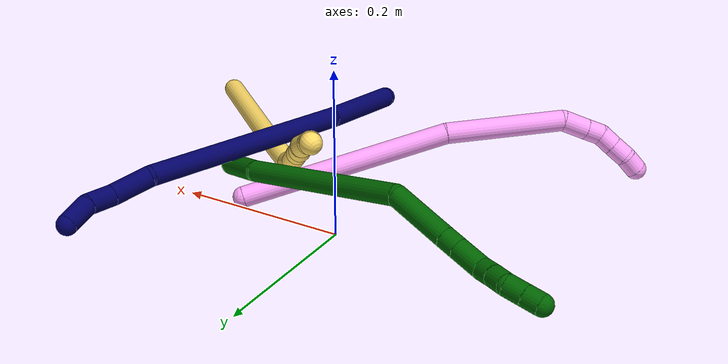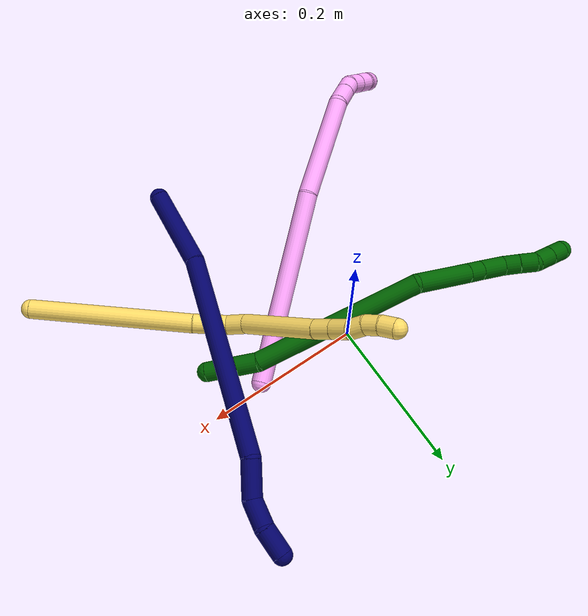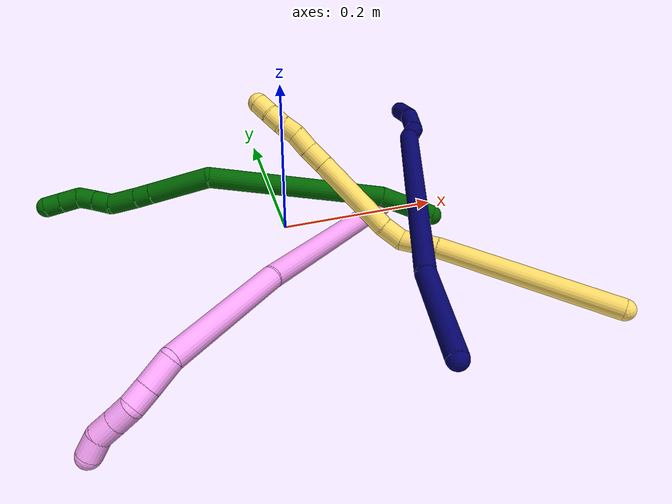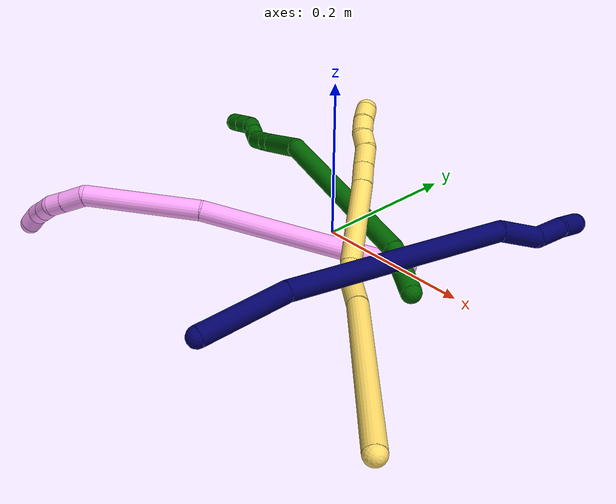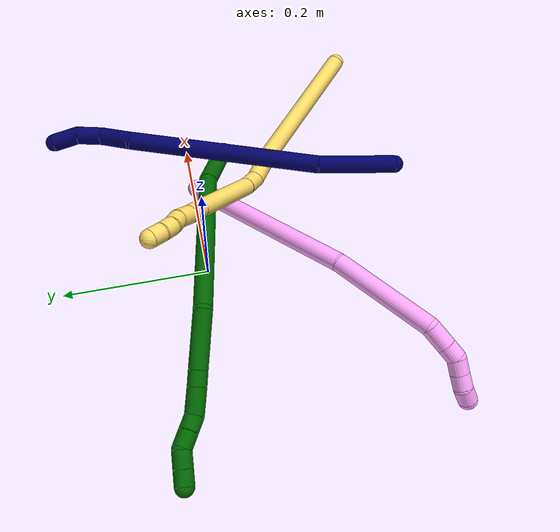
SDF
<sdf version="1.7">
 <world name="default">
  <model name="4">
   <static>0</static>
   <link name="4">
    <collision name="collision-cylinder-e_1_1_4">
     <pose>-0.031244 -0.028802 0.116873 0.241625 -0.253964 -0.030997</pose>
     <geometry><cylinder><radius>0.0125</radius><length>0.248718</length></cylinder></geometry>
     <surface>
      <friction><ode><mu>1.16</mu><mu2>1.16</mu2><slip1>0</slip1><slip2>0</slip2></ode></friction>
      <contact><ode><kp>1e+06</kp><kd>1</kd><max_vel>0</max_vel><min_depth>0.001</min_depth></ode></contact>
     </surface>
    </collision>
    <visual name="visual-cylinder-e_1_1_4">
     <pose>-0.031244 -0.028802 0.116873 0.241625 -0.253964 -0.030997</pose>
     <geometry><cylinder><radius>0.0125</radius><length>0.248718</length></cylinder></geometry>
     <material><ambient>1 0.65098 0.996078 1</ambient></material>
    </visual>
    <collision name="collision-cylinder-e_2_4_5">
     <pose>-0.0693 -0.066215 0.302987 0.12372 -0.097317 -0.006032</pose>
     <geometry><cylinder><radius>0.0125</radius><length>0.140211</length></cylinder></geometry>
     <surface>
      <friction><ode><mu>1.16</mu><mu2>1.16</mu2><slip1>0</slip1><slip2>0</slip2></ode></friction>
      <contact><ode><kp>1e+06</kp><kd>1</kd><max_vel>0</max_vel><min_depth>0.001</min_depth></ode></contact>
     </surface>
    </collision>
    <visual name="visual-cylinder-e_2_4_5">
     <pose>-0.0693 -0.066215 0.302987 0.12372 -0.097317 -0.006032</pose>
     <geometry><cylinder><radius>0.0125</radius><length>0.140211</length></cylinder></geometry>
     <material><ambient>1 0.65098 0.996078 1</ambient></material>
    </visual>
    <collision name="collision-cylinder-e_3_5_6">
     <pose>-0.072298 -0.071928 0.386813 -0.196122 0.251083 -0.02483</pose>
     <geometry><cylinder><radius>0.0125</radius><length>0.030703</length></cylinder></geometry>
     <surface>
      <friction><ode><mu>1.16</mu><mu2>1.16</mu2><slip1>0</slip1><slip2>0</slip2></ode></friction>
      <contact><ode><kp>1e+06</kp><kd>1</kd><max_vel>0</max_vel><min_depth>0.001</min_depth></ode></contact>
     </surface>
    </collision>
    <visual name="visual-cylinder-e_3_5_6">
     <pose>-0.072298 -0.071928 0.386813 -0.196122 0.251083 -0.02483</pose>
     <geometry><cylinder><radius>0.0125</radius><length>0.030703</length></cylinder></geometry>
     <material><ambient>1 0.65098 0.996078 1</ambient></material>
    </visual>
    <collision name="collision-cylinder-e_4_6_7">
     <pose>-0.06599 -0.067386 0.410968 -0.170147 0.251317 -0.021545</pose>
     <geometry><cylinder><radius>0.0125</radius><length>0.02005</length></cylinder></geometry>
     <surface>
      <friction><ode><mu>1.16</mu><mu2>1.16</mu2><slip1>0</slip1><slip2>0</slip2></ode></friction>
      <contact><ode><kp>1e+06</kp><kd>1</kd><max_vel>0</max_vel><min_depth>0.001</min_depth></ode></contact>
     </surface>
    </collision>
    <visual name="visual-cylinder-e_4_6_7">
     <pose>-0.06599 -0.067386 0.410968 -0.170147 0.251317 -0.021545</pose>
     <geometry><cylinder><radius>0.0125</radius><length>0.02005</length></cylinder></geometry>
     <material><ambient>1 0.65098 0.996078 1</ambient></material>
    </visual>
    <collision name="collision-cylinder-e_5_7_8">
     <pose>-0.056885 -0.064308 0.427918 -0.191841 0.721404 -0.072554</pose>
     <geometry><cylinder><radius>0.0125</radius><length>0.020025</length></cylinder></geometry>
     <surface>
      <friction><ode><mu>1.16</mu><mu2>1.16</mu2><slip1>0</slip1><slip2>0</slip2></ode></friction>
      <contact><ode><kp>1e+06</kp><kd>1</kd><max_vel>0</max_vel><min_depth>0.001</min_depth></ode></contact>
     </surface>
    </collision>
    <visual name="visual-cylinder-e_5_7_8">
     <pose>-0.056885 -0.064308 0.427918 -0.191841 0.721404 -0.072554</pose>
     <geometry><cylinder><radius>0.0125</radius><length>0.020025</length></cylinder></geometry>
     <material><ambient>1 0.65098 0.996078 1</ambient></material>
    </visual>
    <collision name="collision-cylinder-e_6_8_9">
     <pose>-0.043777 -0.061706 0.442844 -0.153627 0.704834 -0.056596</pose>
     <geometry><cylinder><radius>0.0125</radius><length>0.02005</length></cylinder></geometry>
     <surface>
      <friction><ode><mu>1.16</mu><mu2>1.16</mu2><slip1>0</slip1><slip2>0</slip2></ode></friction>
      <contact><ode><kp>1e+06</kp><kd>1</kd><max_vel>0</max_vel><min_depth>0.001</min_depth></ode></contact>
     </surface>
    </collision>
    <visual name="visual-cylinder-e_6_8_9">
     <pose>-0.043777 -0.061706 0.442844 -0.153627 0.704834 -0.056596</pose>
     <geometry><cylinder><radius>0.0125</radius><length>0.02005</length></cylinder></geometry>
     <material><ambient>1 0.65098 0.996078 1</ambient></material>
    </visual>
    <collision name="collision-cylinder-e_7_9_2">
     <pose>-0.031782 -0.055888 0.457502 -0.57901 0.574511 -0.175547</pose>
     <geometry><cylinder><radius>0.0125</radius><length>0.020243</length></cylinder></geometry>
     <surface>
      <friction><ode><mu>1.16</mu><mu2>1.16</mu2><slip1>0</slip1><slip2>0</slip2></ode></friction>
      <contact><ode><kp>1e+06</kp><kd>1</kd><max_vel>0</max_vel><min_depth>0.001</min_depth></ode></contact>
     </surface>
    </collision>
    <visual name="visual-cylinder-e_7_9_2">
     <pose>-0.031782 -0.055888 0.457502 -0.57901 0.574511 -0.175547</pose>
     <geometry><cylinder><radius>0.0125</radius><length>0.020243</length></cylinder></geometry>
     <material><ambient>1 0.65098 0.996078 1</ambient></material>
    </visual>
    <collision name="collision-sphere-2">
     <pose>-0.026281 -0.051239 0.464614 0 -0 0</pose>
     <geometry><sphere><radius>0.0125</radius></sphere></geometry>
     <surface>
      <friction><ode><mu>1.16</mu><mu2>1.16</mu2><slip1>0</slip1><slip2>0</slip2></ode></friction>
      <contact><ode><kp>1e+06</kp><kd>1</kd><max_vel>0</max_vel><min_depth>0.001</min_depth></ode></contact>
     </surface>
    </collision>
    <visual name="visual-sphere-2">
     <pose>-0.026281 -0.051239 0.464614 0 -0 0</pose>
     <geometry><sphere><radius>0.0125</radius></sphere></geometry>
     <material><ambient>1 0.65098 0.996078 1</ambient></material>
    </visual>
    <collision name="collision-sphere-9">
     <pose>-0.037282 -0.060537 0.450391 0 -0 0</pose>
     <geometry><sphere><radius>0.0125</radius></sphere></geometry>
     <surface>
      <friction><ode><mu>1.16</mu><mu2>1.16</mu2><slip1>0</slip1><slip2>0</slip2></ode></friction>
      <contact><ode><kp>1e+06</kp><kd>1</kd><max_vel>0</max_vel><min_depth>0.001</min_depth></ode></contact>
     </surface>
    </collision>
    <visual name="visual-sphere-9">
     <pose>-0.037282 -0.060537 0.450391 0 -0 0</pose>
     <geometry><sphere><radius>0.0125</radius></sphere></geometry>
     <material><ambient>1 0.65098 0.996078 1</ambient></material>
    </visual>
    <collision name="collision-sphere-4">
     <pose>-0.062488 -0.057604 0.233746 0 -0 0</pose>
     <geometry><sphere><radius>0.0125</radius></sphere></geometry>
     <surface>
      <friction><ode><mu>1.16</mu><mu2>1.16</mu2><slip1>0</slip1><slip2>0</slip2></ode></friction>
      <contact><ode><kp>1e+06</kp><kd>1</kd><max_vel>0</max_vel><min_depth>0.001</min_depth></ode></contact>
     </surface>
    </collision>
    <visual name="visual-sphere-4">
     <pose>-0.062488 -0.057604 0.233746 0 -0 0</pose>
     <geometry><sphere><radius>0.0125</radius></sphere></geometry>
     <material><ambient>1 0.65098 0.996078 1</ambient></material>
    </visual>
    <collision name="collision-sphere-1">
     <geometry><sphere><radius>0.0125</radius></sphere></geometry>
     <surface>
      <friction><ode><mu>1.16</mu><mu2>1.16</mu2><slip1>0</slip1><slip2>0</slip2></ode></friction>
      <contact><ode><kp>1e+06</kp><kd>1</kd><max_vel>0</max_vel><min_depth>0.001</min_depth></ode></contact>
     </surface>
    </collision>
    <visual name="visual-sphere-1">
     <geometry><sphere><radius>0.0125</radius></sphere></geometry>
     <material><ambient>1 0.65098 0.996078 1</ambient></material>
    </visual>
    <collision name="collision-sphere-8">
     <pose>-0.050272 -0.062874 0.435298 0 -0 0</pose>
     <geometry><sphere><radius>0.0125</radius></sphere></geometry>
     <surface>
      <friction><ode><mu>1.16</mu><mu2>1.16</mu2><slip1>0</slip1><slip2>0</slip2></ode></friction>
      <contact><ode><kp>1e+06</kp><kd>1</kd><max_vel>0</max_vel><min_depth>0.001</min_depth></ode></contact>
     </surface>
    </collision>
    <visual name="visual-sphere-8">
     <pose>-0.050272 -0.062874 0.435298 0 -0 0</pose>
     <geometry><sphere><radius>0.0125</radius></sphere></geometry>
     <material><ambient>1 0.65098 0.996078 1</ambient></material>
    </visual>
    <collision name="collision-sphere-5">
     <pose>-0.076112 -0.074825 0.372227 0 -0 0</pose>
     <geometry><sphere><radius>0.0125</radius></sphere></geometry>
     <surface>
      <friction><ode><mu>1.16</mu><mu2>1.16</mu2><slip1>0</slip1><slip2>0</slip2></ode></friction>
      <contact><ode><kp>1e+06</kp><kd>1</kd><max_vel>0</max_vel><min_depth>0.001</min_depth></ode></contact>
     </surface>
    </collision>
    <visual name="visual-sphere-5">
     <pose>-0.076112 -0.074825 0.372227 0 -0 0</pose>
     <geometry><sphere><radius>0.0125</radius></sphere></geometry>
     <material><ambient>1 0.65098 0.996078 1</ambient></material>
    </visual>
    <collision name="collision-sphere-6">
     <pose>-0.068484 -0.06903 0.401398 0 -0 0</pose>
     <geometry><sphere><radius>0.0125</radius></sphere></geometry>
     <surface>
      <friction><ode><mu>1.16</mu><mu2>1.16</mu2><slip1>0</slip1><slip2>0</slip2></ode></friction>
      <contact><ode><kp>1e+06</kp><kd>1</kd><max_vel>0</max_vel><min_depth>0.001</min_depth></ode></contact>
     </surface>
    </collision>
    <visual name="visual-sphere-6">
     <pose>-0.068484 -0.06903 0.401398 0 -0 0</pose>
     <geometry><sphere><radius>0.0125</radius></sphere></geometry>
     <material><ambient>1 0.65098 0.996078 1</ambient></material>
    </visual>
    <collision name="collision-sphere-7">
     <pose>-0.063497 -0.065741 0.420538 0 -0 0</pose>
     <geometry><sphere><radius>0.0125</radius></sphere></geometry>
     <surface>
      <friction><ode><mu>1.16</mu><mu2>1.16</mu2><slip1>0</slip1><slip2>0</slip2></ode></friction>
      <contact><ode><kp>1e+06</kp><kd>1</kd><max_vel>0</max_vel><min_depth>0.001</min_depth></ode></contact>
     </surface>
    </collision>
    <visual name="visual-sphere-7">
     <pose>-0.063497 -0.065741 0.420538 0 -0 0</pose>
     <geometry><sphere><radius>0.0125</radius></sphere></geometry>
     <material><ambient>1 0.65098 0.996078 1</ambient></material>
    </visual>
    <inertial>
     <pose>-0.047381 -0.047327 0.236752 0 -0 0</pose>
     <mass>0.5</mass>
     <inertia>
      <ixx>0.00145</ixx>
      <ixy>0</ixy>
      <ixz>0</ixz>
      <iyy>0.001454</iyy>
      <iyz>0</iyz>
      <izz>0.000706</izz>
     </inertia>
    </inertial>
   </link>
   <pose>0.129025 -0.00476 0.011519 -1.70085 0.690261 2.16321</pose>
  </model>
  <model name="5">
   <static>0</static>
   <link name="5">
    <collision name="collision-cylinder-e_1_1_4">
     <pose>-0.026333 0.043954 -0.093338 -2.70149 -0.249906 1.02336</pose>
     <geometry><cylinder><radius>0.0125</radius><length>0.212954</length></cylinder></geometry>
     <surface>
      <friction><ode><mu>1.16</mu><mu2>1.16</mu2><slip1>0</slip1><slip2>0</slip2></ode></friction>
      <contact><ode><kp>1e+06</kp><kd>1</kd><max_vel>0</max_vel><min_depth>0.001</min_depth></ode></contact>
     </surface>
    </collision>
    <visual name="visual-cylinder-e_1_1_4">
     <pose>-0.026333 0.043954 -0.093338 -2.70149 -0.249906 1.02336</pose>
     <geometry><cylinder><radius>0.0125</radius><length>0.212954</length></cylinder></geometry>
     <material><ambient>1 0.858824 0.4 1</ambient></material>
    </visual>
    <collision name="collision-cylinder-e_2_4_5">
     <pose>-0.057002 0.095089 -0.207244 -2.80565 -0.196447 1.05283</pose>
     <geometry><cylinder><radius>0.0125</radius><length>0.044425</length></cylinder></geometry>
     <surface>
      <friction><ode><mu>1.16</mu><mu2>1.16</mu2><slip1>0</slip1><slip2>0</slip2></ode></friction>
      <contact><ode><kp>1e+06</kp><kd>1</kd><max_vel>0</max_vel><min_depth>0.001</min_depth></ode></contact>
     </surface>
    </collision>
    <visual name="visual-cylinder-e_2_4_5">
     <pose>-0.057002 0.095089 -0.207244 -2.80565 -0.196447 1.05283</pose>
     <geometry><cylinder><radius>0.0125</radius><length>0.044425</length></cylinder></geometry>
     <material><ambient>1 0.858824 0.4 1</ambient></material>
    </visual>
    <collision name="collision-cylinder-e_3_5_6">
     <pose>-0.069219 0.108466 -0.236625 -2.52898 -0.631605 1.60339</pose>
     <geometry><cylinder><radius>0.0125</radius><length>0.026698</length></cylinder></geometry>
     <surface>
      <friction><ode><mu>1.16</mu><mu2>1.16</mu2><slip1>0</slip1><slip2>0</slip2></ode></friction>
      <contact><ode><kp>1e+06</kp><kd>1</kd><max_vel>0</max_vel><min_depth>0.001</min_depth></ode></contact>
     </surface>
    </collision>
    <visual name="visual-cylinder-e_3_5_6">
     <pose>-0.069219 0.108466 -0.236625 -2.52898 -0.631605 1.60339</pose>
     <geometry><cylinder><radius>0.0125</radius><length>0.026698</length></cylinder></geometry>
     <material><ambient>1 0.858824 0.4 1</ambient></material>
    </visual>
    <collision name="collision-cylinder-e_4_6_7">
     <pose>-0.108462 0.145617 -0.273975 -2.31553 -0.64022 1.29524</pose>
     <geometry><cylinder><radius>0.0125</radius><length>0.104996</length></cylinder></geometry>
     <surface>
      <friction><ode><mu>1.16</mu><mu2>1.16</mu2><slip1>0</slip1><slip2>0</slip2></ode></friction>
      <contact><ode><kp>1e+06</kp><kd>1</kd><max_vel>0</max_vel><min_depth>0.001</min_depth></ode></contact>
     </surface>
    </collision>
    <visual name="visual-cylinder-e_4_6_7">
     <pose>-0.108462 0.145617 -0.273975 -2.31553 -0.64022 1.29524</pose>
     <geometry><cylinder><radius>0.0125</radius><length>0.104996</length></cylinder></geometry>
     <material><ambient>1 0.858824 0.4 1</ambient></material>
    </visual>
    <collision name="collision-cylinder-e_5_7_8">
     <pose>-0.147866 0.1834 -0.309536 -2.37054 -0.687433 1.4455</pose>
     <geometry><cylinder><radius>0.0125</radius><length>0.025351</length></cylinder></geometry>
     <surface>
      <friction><ode><mu>1.16</mu><mu2>1.16</mu2><slip1>0</slip1><slip2>0</slip2></ode></friction>
      <contact><ode><kp>1e+06</kp><kd>1</kd><max_vel>0</max_vel><min_depth>0.001</min_depth></ode></contact>
     </surface>
    </collision>
    <visual name="visual-cylinder-e_5_7_8">
     <pose>-0.147866 0.1834 -0.309536 -2.37054 -0.687433 1.4455</pose>
     <geometry><cylinder><radius>0.0125</radius><length>0.025351</length></cylinder></geometry>
     <material><ambient>1 0.858824 0.4 1</ambient></material>
    </visual>
    <collision name="collision-cylinder-e_6_8_9">
     <pose>-0.164355 0.197369 -0.322596 -2.27231 -0.734657 1.38417</pose>
     <geometry><cylinder><radius>0.0125</radius><length>0.025199</length></cylinder></geometry>
     <surface>
      <friction><ode><mu>1.16</mu><mu2>1.16</mu2><slip1>0</slip1><slip2>0</slip2></ode></friction>
      <contact><ode><kp>1e+06</kp><kd>1</kd><max_vel>0</max_vel><min_depth>0.001</min_depth></ode></contact>
     </surface>
    </collision>
    <visual name="visual-cylinder-e_6_8_9">
     <pose>-0.164355 0.197369 -0.322596 -2.27231 -0.734657 1.38417</pose>
     <geometry><cylinder><radius>0.0125</radius><length>0.025199</length></cylinder></geometry>
     <material><ambient>1 0.858824 0.4 1</ambient></material>
    </visual>
    <collision name="collision-cylinder-e_7_9_10">
     <pose>-0.180091 0.20742 -0.33497 -2.71139 -0.807423 2.19604</pose>
     <geometry><cylinder><radius>0.0125</radius><length>0.020179</length></cylinder></geometry>
     <surface>
      <friction><ode><mu>1.16</mu><mu2>1.16</mu2><slip1>0</slip1><slip2>0</slip2></ode></friction>
      <contact><ode><kp>1e+06</kp><kd>1</kd><max_vel>0</max_vel><min_depth>0.001</min_depth></ode></contact>
     </surface>
    </collision>
    <visual name="visual-cylinder-e_7_9_10">
     <pose>-0.180091 0.20742 -0.33497 -2.71139 -0.807423 2.19604</pose>
     <geometry><cylinder><radius>0.0125</radius><length>0.020179</length></cylinder></geometry>
     <material><ambient>1 0.858824 0.4 1</ambient></material>
    </visual>
    <collision name="collision-cylinder-e_8_10_11">
     <pose>-0.193284 0.215831 -0.347297 -2.39838 -0.627975 1.38938</pose>
     <geometry><cylinder><radius>0.0125</radius><length>0.020095</length></cylinder></geometry>
     <surface>
      <friction><ode><mu>1.16</mu><mu2>1.16</mu2><slip1>0</slip1><slip2>0</slip2></ode></friction>
      <contact><ode><kp>1e+06</kp><kd>1</kd><max_vel>0</max_vel><min_depth>0.001</min_depth></ode></contact>
     </surface>
    </collision>
    <visual name="visual-cylinder-e_8_10_11">
     <pose>-0.193284 0.215831 -0.347297 -2.39838 -0.627975 1.38938</pose>
     <geometry><cylinder><radius>0.0125</radius><length>0.020095</length></cylinder></geometry>
     <material><ambient>1 0.858824 0.4 1</ambient></material>
    </visual>
    <collision name="collision-cylinder-e_9_11_2">
     <pose>-0.203772 0.227846 -0.359414 -2.32592 -0.473661 1.01888</pose>
     <geometry><cylinder><radius>0.0125</radius><length>0.020103</length></cylinder></geometry>
     <surface>
      <friction><ode><mu>1.16</mu><mu2>1.16</mu2><slip1>0</slip1><slip2>0</slip2></ode></friction>
      <contact><ode><kp>1e+06</kp><kd>1</kd><max_vel>0</max_vel><min_depth>0.001</min_depth></ode></contact>
     </surface>
    </collision>
    <visual name="visual-cylinder-e_9_11_2">
     <pose>-0.203772 0.227846 -0.359414 -2.32592 -0.473661 1.01888</pose>
     <geometry><cylinder><radius>0.0125</radius><length>0.020103</length></cylinder></geometry>
     <material><ambient>1 0.858824 0.4 1</ambient></material>
    </visual>
    <collision name="collision-sphere-2">
     <pose>-0.208357 0.23436 -0.365544 0 -0 0</pose>
     <geometry><sphere><radius>0.0125</radius></sphere></geometry>
     <surface>
      <friction><ode><mu>1.16</mu><mu2>1.16</mu2><slip1>0</slip1><slip2>0</slip2></ode></friction>
      <contact><ode><kp>1e+06</kp><kd>1</kd><max_vel>0</max_vel><min_depth>0.001</min_depth></ode></contact>
     </surface>
    </collision>
    <visual name="visual-sphere-2">
     <pose>-0.208357 0.23436 -0.365544 0 -0 0</pose>
     <geometry><sphere><radius>0.0125</radius></sphere></geometry>
     <material><ambient>1 0.858824 0.4 1</ambient></material>
    </visual>
    <collision name="collision-sphere-11">
     <pose>-0.199187 0.221333 -0.353283 0 -0 0</pose>
     <geometry><sphere><radius>0.0125</radius></sphere></geometry>
     <surface>
      <friction><ode><mu>1.16</mu><mu2>1.16</mu2><slip1>0</slip1><slip2>0</slip2></ode></friction>
      <contact><ode><kp>1e+06</kp><kd>1</kd><max_vel>0</max_vel><min_depth>0.001</min_depth></ode></contact>
     </surface>
    </collision>
    <visual name="visual-sphere-11">
     <pose>-0.199187 0.221333 -0.353283 0 -0 0</pose>
     <geometry><sphere><radius>0.0125</radius></sphere></geometry>
     <material><ambient>1 0.858824 0.4 1</ambient></material>
    </visual>
    <collision name="collision-sphere-10">
     <pose>-0.187381 0.210329 -0.34131 0 -0 0</pose>
     <geometry><sphere><radius>0.0125</radius></sphere></geometry>
     <surface>
      <friction><ode><mu>1.16</mu><mu2>1.16</mu2><slip1>0</slip1><slip2>0</slip2></ode></friction>
      <contact><ode><kp>1e+06</kp><kd>1</kd><max_vel>0</max_vel><min_depth>0.001</min_depth></ode></contact>
     </surface>
    </collision>
    <visual name="visual-sphere-10">
     <pose>-0.187381 0.210329 -0.34131 0 -0 0</pose>
     <geometry><sphere><radius>0.0125</radius></sphere></geometry>
     <material><ambient>1 0.858824 0.4 1</ambient></material>
    </visual>
    <collision name="collision-sphere-9">
     <pose>-0.172801 0.204511 -0.32863 0 -0 0</pose>
     <geometry><sphere><radius>0.0125</radius></sphere></geometry>
     <surface>
      <friction><ode><mu>1.16</mu><mu2>1.16</mu2><slip1>0</slip1><slip2>0</slip2></ode></friction>
      <contact><ode><kp>1e+06</kp><kd>1</kd><max_vel>0</max_vel><min_depth>0.001</min_depth></ode></contact>
     </surface>
    </collision>
    <visual name="visual-sphere-9">
     <pose>-0.172801 0.204511 -0.32863 0 -0 0</pose>
     <geometry><sphere><radius>0.0125</radius></sphere></geometry>
     <material><ambient>1 0.858824 0.4 1</ambient></material>
    </visual>
    <collision name="collision-sphere-4">
     <pose>-0.052666 0.087907 -0.186676 0 -0 0</pose>
     <geometry><sphere><radius>0.0125</radius></sphere></geometry>
     <surface>
      <friction><ode><mu>1.16</mu><mu2>1.16</mu2><slip1>0</slip1><slip2>0</slip2></ode></friction>
      <contact><ode><kp>1e+06</kp><kd>1</kd><max_vel>0</max_vel><min_depth>0.001</min_depth></ode></contact>
     </surface>
    </collision>
    <visual name="visual-sphere-4">
     <pose>-0.052666 0.087907 -0.186676 0 -0 0</pose>
     <geometry><sphere><radius>0.0125</radius></sphere></geometry>
     <material><ambient>1 0.858824 0.4 1</ambient></material>
    </visual>
    <collision name="collision-sphere-1">
     <geometry><sphere><radius>0.0125</radius></sphere></geometry>
     <surface>
      <friction><ode><mu>1.16</mu><mu2>1.16</mu2><slip1>0</slip1><slip2>0</slip2></ode></friction>
      <contact><ode><kp>1e+06</kp><kd>1</kd><max_vel>0</max_vel><min_depth>0.001</min_depth></ode></contact>
     </surface>
    </collision>
    <visual name="visual-sphere-1">
     <geometry><sphere><radius>0.0125</radius></sphere></geometry>
     <material><ambient>1 0.858824 0.4 1</ambient></material>
    </visual>
    <collision name="collision-sphere-8">
     <pose>-0.155909 0.190227 -0.316562 0 -0 0</pose>
     <geometry><sphere><radius>0.0125</radius></sphere></geometry>
     <surface>
      <friction><ode><mu>1.16</mu><mu2>1.16</mu2><slip1>0</slip1><slip2>0</slip2></ode></friction>
      <contact><ode><kp>1e+06</kp><kd>1</kd><max_vel>0</max_vel><min_depth>0.001</min_depth></ode></contact>
     </surface>
    </collision>
    <visual name="visual-sphere-8">
     <pose>-0.155909 0.190227 -0.316562 0 -0 0</pose>
     <geometry><sphere><radius>0.0125</radius></sphere></geometry>
     <material><ambient>1 0.858824 0.4 1</ambient></material>
    </visual>
    <collision name="collision-sphere-5">
     <pose>-0.061337 0.102271 -0.227811 0 -0 0</pose>
     <geometry><sphere><radius>0.0125</radius></sphere></geometry>
     <surface>
      <friction><ode><mu>1.16</mu><mu2>1.16</mu2><slip1>0</slip1><slip2>0</slip2></ode></friction>
      <contact><ode><kp>1e+06</kp><kd>1</kd><max_vel>0</max_vel><min_depth>0.001</min_depth></ode></contact>
     </surface>
    </collision>
    <visual name="visual-sphere-5">
     <pose>-0.061337 0.102271 -0.227811 0 -0 0</pose>
     <geometry><sphere><radius>0.0125</radius></sphere></geometry>
     <material><ambient>1 0.858824 0.4 1</ambient></material>
    </visual>
    <collision name="collision-sphere-6">
     <pose>-0.077101 0.114661 -0.24544 0 -0 0</pose>
     <geometry><sphere><radius>0.0125</radius></sphere></geometry>
     <surface>
      <friction><ode><mu>1.16</mu><mu2>1.16</mu2><slip1>0</slip1><slip2>0</slip2></ode></friction>
      <contact><ode><kp>1e+06</kp><kd>1</kd><max_vel>0</max_vel><min_depth>0.001</min_depth></ode></contact>
     </surface>
    </collision>
    <visual name="visual-sphere-6">
     <pose>-0.077101 0.114661 -0.24544 0 -0 0</pose>
     <geometry><sphere><radius>0.0125</radius></sphere></geometry>
     <material><ambient>1 0.858824 0.4 1</ambient></material>
    </visual>
    <collision name="collision-sphere-7">
     <pose>-0.139823 0.176573 -0.30251 0 -0 0</pose>
     <geometry><sphere><radius>0.0125</radius></sphere></geometry>
     <surface>
      <friction><ode><mu>1.16</mu><mu2>1.16</mu2><slip1>0</slip1><slip2>0</slip2></ode></friction>
      <contact><ode><kp>1e+06</kp><kd>1</kd><max_vel>0</max_vel><min_depth>0.001</min_depth></ode></contact>
     </surface>
    </collision>
    <visual name="visual-sphere-7">
     <pose>-0.139823 0.176573 -0.30251 0 -0 0</pose>
     <geometry><sphere><radius>0.0125</radius></sphere></geometry>
     <material><ambient>1 0.858824 0.4 1</ambient></material>
    </visual>
    <inertial>
     <pose>-0.081762 0.108991 -0.202214 0 -0 0</pose>
     <mass>0.5</mass>
     <inertia>
      <ixx>0.001188</ixx>
      <ixy>0</ixy>
      <ixz>0</ixz>
      <iyy>0.0005</iyy>
      <iyz>0</iyz>
      <izz>-0.000162</izz>
     </inertia>
    </inertial>
   </link>
   <pose>0.318331 -0.255955 0.01249 0.578503 1.21259 0.252553</pose>
  </model>
  <model name="6">
   <static>0</static>
   <link name="6">
    <collision name="collision-cylinder-e_1_1_4">
     <pose>-0.022661 0.005154 0.024388 -0.208286 -0.737824 0.080774</pose>
     <geometry><cylinder><radius>0.0125</radius><length>0.067376</length></cylinder></geometry>
     <surface>
      <friction><ode><mu>1.16</mu><mu2>1.16</mu2><slip1>0</slip1><slip2>0</slip2></ode></friction>
      <contact><ode><kp>1e+06</kp><kd>1</kd><max_vel>0</max_vel><min_depth>0.001</min_depth></ode></contact>
     </surface>
    </collision>
    <visual name="visual-cylinder-e_1_1_4">
     <pose>-0.022661 0.005154 0.024388 -0.208286 -0.737824 0.080774</pose>
     <geometry><cylinder><radius>0.0125</radius><length>0.067376</length></cylinder></geometry>
     <material><ambient>0 0.392157 0.003922 1</ambient></material>
    </visual>
    <collision name="collision-cylinder-e_2_4_5">
     <pose>-0.132209 0.04699 0.102863 -0.595932 -0.925919 0.304213</pose>
     <geometry><cylinder><radius>0.0125</radius><length>0.217441</length></cylinder></geometry>
     <surface>
      <friction><ode><mu>1.16</mu><mu2>1.16</mu2><slip1>0</slip1><slip2>0</slip2></ode></friction>
      <contact><ode><kp>1e+06</kp><kd>1</kd><max_vel>0</max_vel><min_depth>0.001</min_depth></ode></contact>
     </surface>
    </collision>
    <visual name="visual-cylinder-e_2_4_5">
     <pose>-0.132209 0.04699 0.102863 -0.595932 -0.925919 0.304213</pose>
     <geometry><cylinder><radius>0.0125</radius><length>0.217441</length></cylinder></geometry>
     <material><ambient>0 0.392157 0.003922 1</ambient></material>
    </visual>
    <collision name="collision-cylinder-e_3_5_6">
     <pose>-0.236351 0.110221 0.176883 -0.926811 -0.479318 0.243005</pose>
     <geometry><cylinder><radius>0.0125</radius><length>0.074835</length></cylinder></geometry>
     <surface>
      <friction><ode><mu>1.16</mu><mu2>1.16</mu2><slip1>0</slip1><slip2>0</slip2></ode></friction>
      <contact><ode><kp>1e+06</kp><kd>1</kd><max_vel>0</max_vel><min_depth>0.001</min_depth></ode></contact>
     </surface>
    </collision>
    <visual name="visual-cylinder-e_3_5_6">
     <pose>-0.236351 0.110221 0.176883 -0.926811 -0.479318 0.243005</pose>
     <geometry><cylinder><radius>0.0125</radius><length>0.074835</length></cylinder></geometry>
     <material><ambient>0 0.392157 0.003922 1</ambient></material>
    </visual>
    <collision name="collision-cylinder-e_4_6_7">
     <pose>-0.258309 0.143897 0.202101 -0.932616 -0.487453 0.249031</pose>
     <geometry><cylinder><radius>0.0125</radius><length>0.02008</length></cylinder></geometry>
     <surface>
      <friction><ode><mu>1.16</mu><mu2>1.16</mu2><slip1>0</slip1><slip2>0</slip2></ode></friction>
      <contact><ode><kp>1e+06</kp><kd>1</kd><max_vel>0</max_vel><min_depth>0.001</min_depth></ode></contact>
     </surface>
    </collision>
    <visual name="visual-cylinder-e_4_6_7">
     <pose>-0.258309 0.143897 0.202101 -0.932616 -0.487453 0.249031</pose>
     <geometry><cylinder><radius>0.0125</radius><length>0.02008</length></cylinder></geometry>
     <material><ambient>0 0.392157 0.003922 1</ambient></material>
    </visual>
    <collision name="collision-cylinder-e_5_7_8">
     <pose>-0.271303 0.163038 0.216922 -0.899943 -0.495525 0.243164</pose>
     <geometry><cylinder><radius>0.0125</radius><length>0.034875</length></cylinder></geometry>
     <surface>
      <friction><ode><mu>1.16</mu><mu2>1.16</mu2><slip1>0</slip1><slip2>0</slip2></ode></friction>
      <contact><ode><kp>1e+06</kp><kd>1</kd><max_vel>0</max_vel><min_depth>0.001</min_depth></ode></contact>
     </surface>
    </collision>
    <visual name="visual-cylinder-e_5_7_8">
     <pose>-0.271303 0.163038 0.216922 -0.899943 -0.495525 0.243164</pose>
     <geometry><cylinder><radius>0.0125</radius><length>0.034875</length></cylinder></geometry>
     <material><ambient>0 0.392157 0.003922 1</ambient></material>
    </visual>
    <collision name="collision-cylinder-e_6_8_9">
     <pose>-0.285711 0.178345 0.234327 -0.39616 -0.622084 0.12887</pose>
     <geometry><cylinder><radius>0.0125</radius><length>0.02099</length></cylinder></geometry>
     <surface>
      <friction><ode><mu>1.16</mu><mu2>1.16</mu2><slip1>0</slip1><slip2>0</slip2></ode></friction>
      <contact><ode><kp>1e+06</kp><kd>1</kd><max_vel>0</max_vel><min_depth>0.001</min_depth></ode></contact>
     </surface>
    </collision>
    <visual name="visual-cylinder-e_6_8_9">
     <pose>-0.285711 0.178345 0.234327 -0.39616 -0.622084 0.12887</pose>
     <geometry><cylinder><radius>0.0125</radius><length>0.02099</length></cylinder></geometry>
     <material><ambient>0 0.392157 0.003922 1</ambient></material>
    </visual>
    <collision name="collision-cylinder-e_7_9_10">
     <pose>-0.297894 0.185447 0.250389 -0.435367 -0.591324 0.13454</pose>
     <geometry><cylinder><radius>0.0125</radius><length>0.021769</length></cylinder></geometry>
     <surface>
      <friction><ode><mu>1.16</mu><mu2>1.16</mu2><slip1>0</slip1><slip2>0</slip2></ode></friction>
      <contact><ode><kp>1e+06</kp><kd>1</kd><max_vel>0</max_vel><min_depth>0.001</min_depth></ode></contact>
     </surface>
    </collision>
    <visual name="visual-cylinder-e_7_9_10">
     <pose>-0.297894 0.185447 0.250389 -0.435367 -0.591324 0.13454</pose>
     <geometry><cylinder><radius>0.0125</radius><length>0.021769</length></cylinder></geometry>
     <material><ambient>0 0.392157 0.003922 1</ambient></material>
    </visual>
    <collision name="collision-cylinder-e_8_10_11">
     <pose>-0.31077 0.197055 0.263082 -1.04738 -0.647495 0.382803</pose>
     <geometry><cylinder><radius>0.0125</radius><length>0.022574</length></cylinder></geometry>
     <surface>
      <friction><ode><mu>1.16</mu><mu2>1.16</mu2><slip1>0</slip1><slip2>0</slip2></ode></friction>
      <contact><ode><kp>1e+06</kp><kd>1</kd><max_vel>0</max_vel><min_depth>0.001</min_depth></ode></contact>
     </surface>
    </collision>
    <visual name="visual-cylinder-e_8_10_11">
     <pose>-0.31077 0.197055 0.263082 -1.04738 -0.647495 0.382803</pose>
     <geometry><cylinder><radius>0.0125</radius><length>0.022574</length></cylinder></geometry>
     <material><ambient>0 0.392157 0.003922 1</ambient></material>
    </visual>
    <collision name="collision-cylinder-e_9_11_2">
     <pose>-0.323628 0.211783 0.271579 -1.04767 -0.647392 0.382864</pose>
     <geometry><cylinder><radius>0.0125</radius><length>0.02006</length></cylinder></geometry>
     <surface>
      <friction><ode><mu>1.16</mu><mu2>1.16</mu2><slip1>0</slip1><slip2>0</slip2></ode></friction>
      <contact><ode><kp>1e+06</kp><kd>1</kd><max_vel>0</max_vel><min_depth>0.001</min_depth></ode></contact>
     </surface>
    </collision>
    <visual name="visual-cylinder-e_9_11_2">
     <pose>-0.323628 0.211783 0.271579 -1.04767 -0.647392 0.382864</pose>
     <geometry><cylinder><radius>0.0125</radius><length>0.02006</length></cylinder></geometry>
     <material><ambient>0 0.392157 0.003922 1</ambient></material>
    </visual>
    <collision name="collision-sphere-2">
     <pose>-0.329677 0.218714 0.275576 0 -0 0</pose>
     <geometry><sphere><radius>0.0125</radius></sphere></geometry>
     <surface>
      <friction><ode><mu>1.16</mu><mu2>1.16</mu2><slip1>0</slip1><slip2>0</slip2></ode></friction>
      <contact><ode><kp>1e+06</kp><kd>1</kd><max_vel>0</max_vel><min_depth>0.001</min_depth></ode></contact>
     </surface>
    </collision>
    <visual name="visual-sphere-2">
     <pose>-0.329677 0.218714 0.275576 0 -0 0</pose>
     <geometry><sphere><radius>0.0125</radius></sphere></geometry>
     <material><ambient>0 0.392157 0.003922 1</ambient></material>
    </visual>
    <collision name="collision-sphere-11">
     <pose>-0.317578 0.204852 0.267582 0 -0 0</pose>
     <geometry><sphere><radius>0.0125</radius></sphere></geometry>
     <surface>
      <friction><ode><mu>1.16</mu><mu2>1.16</mu2><slip1>0</slip1><slip2>0</slip2></ode></friction>
      <contact><ode><kp>1e+06</kp><kd>1</kd><max_vel>0</max_vel><min_depth>0.001</min_depth></ode></contact>
     </surface>
    </collision>
    <visual name="visual-sphere-11">
     <pose>-0.317578 0.204852 0.267582 0 -0 0</pose>
     <geometry><sphere><radius>0.0125</radius></sphere></geometry>
     <material><ambient>0 0.392157 0.003922 1</ambient></material>
    </visual>
    <collision name="collision-sphere-10">
     <pose>-0.303962 0.189258 0.258582 0 -0 0</pose>
     <geometry><sphere><radius>0.0125</radius></sphere></geometry>
     <surface>
      <friction><ode><mu>1.16</mu><mu2>1.16</mu2><slip1>0</slip1><slip2>0</slip2></ode></friction>
      <contact><ode><kp>1e+06</kp><kd>1</kd><max_vel>0</max_vel><min_depth>0.001</min_depth></ode></contact>
     </surface>
    </collision>
    <visual name="visual-sphere-10">
     <pose>-0.303962 0.189258 0.258582 0 -0 0</pose>
     <geometry><sphere><radius>0.0125</radius></sphere></geometry>
     <material><ambient>0 0.392157 0.003922 1</ambient></material>
    </visual>
    <collision name="collision-sphere-9">
     <pose>-0.291827 0.181636 0.242195 0 -0 0</pose>
     <geometry><sphere><radius>0.0125</radius></sphere></geometry>
     <surface>
      <friction><ode><mu>1.16</mu><mu2>1.16</mu2><slip1>0</slip1><slip2>0</slip2></ode></friction>
      <contact><ode><kp>1e+06</kp><kd>1</kd><max_vel>0</max_vel><min_depth>0.001</min_depth></ode></contact>
     </surface>
    </collision>
    <visual name="visual-sphere-9">
     <pose>-0.291827 0.181636 0.242195 0 -0 0</pose>
     <geometry><sphere><radius>0.0125</radius></sphere></geometry>
     <material><ambient>0 0.392157 0.003922 1</ambient></material>
    </visual>
    <collision name="collision-sphere-4">
     <pose>-0.045322 0.010309 0.048776 0 -0 0</pose>
     <geometry><sphere><radius>0.0125</radius></sphere></geometry>
     <surface>
      <friction><ode><mu>1.16</mu><mu2>1.16</mu2><slip1>0</slip1><slip2>0</slip2></ode></friction>
      <contact><ode><kp>1e+06</kp><kd>1</kd><max_vel>0</max_vel><min_depth>0.001</min_depth></ode></contact>
     </surface>
    </collision>
    <visual name="visual-sphere-4">
     <pose>-0.045322 0.010309 0.048776 0 -0 0</pose>
     <geometry><sphere><radius>0.0125</radius></sphere></geometry>
     <material><ambient>0 0.392157 0.003922 1</ambient></material>
    </visual>
    <collision name="collision-sphere-1">
     <geometry><sphere><radius>0.0125</radius></sphere></geometry>
     <surface>
      <friction><ode><mu>1.16</mu><mu2>1.16</mu2><slip1>0</slip1><slip2>0</slip2></ode></friction>
      <contact><ode><kp>1e+06</kp><kd>1</kd><max_vel>0</max_vel><min_depth>0.001</min_depth></ode></contact>
     </surface>
    </collision>
    <visual name="visual-sphere-1">
     <geometry><sphere><radius>0.0125</radius></sphere></geometry>
     <material><ambient>0 0.392157 0.003922 1</ambient></material>
    </visual>
    <collision name="collision-sphere-8">
     <pose>-0.279595 0.175054 0.226458 0 -0 0</pose>
     <geometry><sphere><radius>0.0125</radius></sphere></geometry>
     <surface>
      <friction><ode><mu>1.16</mu><mu2>1.16</mu2><slip1>0</slip1><slip2>0</slip2></ode></friction>
      <contact><ode><kp>1e+06</kp><kd>1</kd><max_vel>0</max_vel><min_depth>0.001</min_depth></ode></contact>
     </surface>
    </collision>
    <visual name="visual-sphere-8">
     <pose>-0.279595 0.175054 0.226458 0 -0 0</pose>
     <geometry><sphere><radius>0.0125</radius></sphere></geometry>
     <material><ambient>0 0.392157 0.003922 1</ambient></material>
    </visual>
    <collision name="collision-sphere-5">
     <pose>-0.219095 0.08367 0.15695 0 -0 0</pose>
     <geometry><sphere><radius>0.0125</radius></sphere></geometry>
     <surface>
      <friction><ode><mu>1.16</mu><mu2>1.16</mu2><slip1>0</slip1><slip2>0</slip2></ode></friction>
      <contact><ode><kp>1e+06</kp><kd>1</kd><max_vel>0</max_vel><min_depth>0.001</min_depth></ode></contact>
     </surface>
    </collision>
    <visual name="visual-sphere-5">
     <pose>-0.219095 0.08367 0.15695 0 -0 0</pose>
     <geometry><sphere><radius>0.0125</radius></sphere></geometry>
     <material><ambient>0 0.392157 0.003922 1</ambient></material>
    </visual>
    <collision name="collision-sphere-6">
     <pose>-0.253607 0.136773 0.196817 0 -0 0</pose>
     <geometry><sphere><radius>0.0125</radius></sphere></geometry>
     <surface>
      <friction><ode><mu>1.16</mu><mu2>1.16</mu2><slip1>0</slip1><slip2>0</slip2></ode></friction>
      <contact><ode><kp>1e+06</kp><kd>1</kd><max_vel>0</max_vel><min_depth>0.001</min_depth></ode></contact>
     </surface>
    </collision>
    <visual name="visual-sphere-6">
     <pose>-0.253607 0.136773 0.196817 0 -0 0</pose>
     <geometry><sphere><radius>0.0125</radius></sphere></geometry>
     <material><ambient>0 0.392157 0.003922 1</ambient></material>
    </visual>
    <collision name="collision-sphere-7">
     <pose>-0.263012 0.151022 0.207386 0 -0 0</pose>
     <geometry><sphere><radius>0.0125</radius></sphere></geometry>
     <surface>
      <friction><ode><mu>1.16</mu><mu2>1.16</mu2><slip1>0</slip1><slip2>0</slip2></ode></friction>
      <contact><ode><kp>1e+06</kp><kd>1</kd><max_vel>0</max_vel><min_depth>0.001</min_depth></ode></contact>
     </surface>
    </collision>
    <visual name="visual-sphere-7">
     <pose>-0.263012 0.151022 0.207386 0 -0 0</pose>
     <geometry><sphere><radius>0.0125</radius></sphere></geometry>
     <material><ambient>0 0.392157 0.003922 1</ambient></material>
    </visual>
    <inertial>
     <pose>-0.177199 0.087732 0.141252 0 -0 0</pose>
     <mass>0.5</mass>
     <inertia>
      <ixx>0.000703</ixx>
      <ixy>0</ixy>
      <ixz>0</ixz>
      <iyy>0.001048</iyy>
      <iyz>0</iyz>
      <izz>0.000425</izz>
     </inertia>
    </inertial>
   </link>
   <pose>0.17862 -0.0522 0.021333 -1.54762 0.613001 0.355792</pose>
  </model>
  <model name="7">
   <static>0</static>
   <link name="7">
    <collision name="collision-cylinder-e_1_1_4">
     <pose>0.003777 0.043238 0.034923 -0.891376 0.067852 -0.032426</pose>
     <geometry><cylinder><radius>0.0125</radius><length>0.111417</length></cylinder></geometry>
     <surface>
      <friction><ode><mu>1.16</mu><mu2>1.16</mu2><slip1>0</slip1><slip2>0</slip2></ode></friction>
      <contact><ode><kp>1e+06</kp><kd>1</kd><max_vel>0</max_vel><min_depth>0.001</min_depth></ode></contact>
     </surface>
    </collision>
    <visual name="visual-cylinder-e_1_1_4">
     <pose>0.003777 0.043238 0.034923 -0.891376 0.067852 -0.032426</pose>
     <geometry><cylinder><radius>0.0125</radius><length>0.111417</length></cylinder></geometry>
     <material><ambient>0.003922 0 0.403922 1</ambient></material>
    </visual>
    <collision name="collision-cylinder-e_2_4_5">
     <pose>0.043532 0.191465 0.145231 -0.948079 0.271488 -0.139922</pose>
     <geometry><cylinder><radius>0.0125</radius><length>0.268327</length></cylinder></geometry>
     <surface>
      <friction><ode><mu>1.16</mu><mu2>1.16</mu2><slip1>0</slip1><slip2>0</slip2></ode></friction>
      <contact><ode><kp>1e+06</kp><kd>1</kd><max_vel>0</max_vel><min_depth>0.001</min_depth></ode></contact>
     </surface>
    </collision>
    <visual name="visual-cylinder-e_2_4_5">
     <pose>0.043532 0.191465 0.145231 -0.948079 0.271488 -0.139922</pose>
     <geometry><cylinder><radius>0.0125</radius><length>0.268327</length></cylinder></geometry>
     <material><ambient>0.003922 0 0.403922 1</ambient></material>
    </visual>
    <collision name="collision-cylinder-e_3_5_6">
     <pose>0.091425 0.316693 0.2263 -1.29695 0.515646 -0.394456</pose>
     <geometry><cylinder><radius>0.0125</radius><length>0.048328</length></cylinder></geometry>
     <surface>
      <friction><ode><mu>1.16</mu><mu2>1.16</mu2><slip1>0</slip1><slip2>0</slip2></ode></friction>
      <contact><ode><kp>1e+06</kp><kd>1</kd><max_vel>0</max_vel><min_depth>0.001</min_depth></ode></contact>
     </surface>
    </collision>
    <visual name="visual-cylinder-e_3_5_6">
     <pose>0.091425 0.316693 0.2263 -1.29695 0.515646 -0.394456</pose>
     <geometry><cylinder><radius>0.0125</radius><length>0.048328</length></cylinder></geometry>
     <material><ambient>0.003922 0 0.403922 1</ambient></material>
    </visual>
    <collision name="collision-cylinder-e_4_6_7">
     <pose>0.105836 0.351072 0.242619 -0.926019 0.140139 -0.070044</pose>
     <geometry><cylinder><radius>0.0125</radius><length>0.035736</length></cylinder></geometry>
     <surface>
      <friction><ode><mu>1.16</mu><mu2>1.16</mu2><slip1>0</slip1><slip2>0</slip2></ode></friction>
      <contact><ode><kp>1e+06</kp><kd>1</kd><max_vel>0</max_vel><min_depth>0.001</min_depth></ode></contact>
     </surface>
    </collision>
    <visual name="visual-cylinder-e_4_6_7">
     <pose>0.105836 0.351072 0.242619 -0.926019 0.140139 -0.070044</pose>
     <geometry><cylinder><radius>0.0125</radius><length>0.035736</length></cylinder></geometry>
     <material><ambient>0.003922 0 0.403922 1</ambient></material>
    </visual>
    <collision name="collision-cylinder-e_5_7_2">
     <pose>0.107478 0.382251 0.259289 -1.23032 -0.047196 0.033353</pose>
     <geometry><cylinder><radius>0.0125</radius><length>0.036192</length></cylinder></geometry>
     <surface>
      <friction><ode><mu>1.16</mu><mu2>1.16</mu2><slip1>0</slip1><slip2>0</slip2></ode></friction>
      <contact><ode><kp>1e+06</kp><kd>1</kd><max_vel>0</max_vel><min_depth>0.001</min_depth></ode></contact>
     </surface>
    </collision>
    <visual name="visual-cylinder-e_5_7_2">
     <pose>0.107478 0.382251 0.259289 -1.23032 -0.047196 0.033353</pose>
     <geometry><cylinder><radius>0.0125</radius><length>0.036192</length></cylinder></geometry>
     <material><ambient>0.003922 0 0.403922 1</ambient></material>
    </visual>
    <collision name="collision-sphere-2">
     <pose>0.106625 0.399289 0.265325 0 -0 0</pose>
     <geometry><sphere><radius>0.0125</radius></sphere></geometry>
     <surface>
      <friction><ode><mu>1.16</mu><mu2>1.16</mu2><slip1>0</slip1><slip2>0</slip2></ode></friction>
      <contact><ode><kp>1e+06</kp><kd>1</kd><max_vel>0</max_vel><min_depth>0.001</min_depth></ode></contact>
     </surface>
    </collision>
    <visual name="visual-sphere-2">
     <pose>0.106625 0.399289 0.265325 0 -0 0</pose>
     <geometry><sphere><radius>0.0125</radius></sphere></geometry>
     <material><ambient>0.003922 0 0.403922 1</ambient></material>
    </visual>
    <collision name="collision-sphere-7">
     <pose>0.108332 0.365213 0.253253 0 -0 0</pose>
     <geometry><sphere><radius>0.0125</radius></sphere></geometry>
     <surface>
      <friction><ode><mu>1.16</mu><mu2>1.16</mu2><slip1>0</slip1><slip2>0</slip2></ode></friction>
      <contact><ode><kp>1e+06</kp><kd>1</kd><max_vel>0</max_vel><min_depth>0.001</min_depth></ode></contact>
     </surface>
    </collision>
    <visual name="visual-sphere-7">
     <pose>0.108332 0.365213 0.253253 0 -0 0</pose>
     <geometry><sphere><radius>0.0125</radius></sphere></geometry>
     <material><ambient>0.003922 0 0.403922 1</ambient></material>
    </visual>
    <collision name="collision-sphere-6">
     <pose>0.103341 0.336931 0.231985 0 -0 0</pose>
     <geometry><sphere><radius>0.0125</radius></sphere></geometry>
     <surface>
      <friction><ode><mu>1.16</mu><mu2>1.16</mu2><slip1>0</slip1><slip2>0</slip2></ode></friction>
      <contact><ode><kp>1e+06</kp><kd>1</kd><max_vel>0</max_vel><min_depth>0.001</min_depth></ode></contact>
     </surface>
    </collision>
    <visual name="visual-sphere-6">
     <pose>0.103341 0.336931 0.231985 0 -0 0</pose>
     <geometry><sphere><radius>0.0125</radius></sphere></geometry>
     <material><ambient>0.003922 0 0.403922 1</ambient></material>
    </visual>
    <collision name="collision-sphere-5">
     <pose>0.07951 0.296454 0.220615 0 -0 0</pose>
     <geometry><sphere><radius>0.0125</radius></sphere></geometry>
     <surface>
      <friction><ode><mu>1.16</mu><mu2>1.16</mu2><slip1>0</slip1><slip2>0</slip2></ode></friction>
      <contact><ode><kp>1e+06</kp><kd>1</kd><max_vel>0</max_vel><min_depth>0.001</min_depth></ode></contact>
     </surface>
    </collision>
    <visual name="visual-sphere-5">
     <pose>0.07951 0.296454 0.220615 0 -0 0</pose>
     <geometry><sphere><radius>0.0125</radius></sphere></geometry>
     <material><ambient>0.003922 0 0.403922 1</ambient></material>
    </visual>
    <collision name="collision-sphere-1">
     <geometry><sphere><radius>0.0125</radius></sphere></geometry>
     <surface>
      <friction><ode><mu>1.16</mu><mu2>1.16</mu2><slip1>0</slip1><slip2>0</slip2></ode></friction>
      <contact><ode><kp>1e+06</kp><kd>1</kd><max_vel>0</max_vel><min_depth>0.001</min_depth></ode></contact>
     </surface>
    </collision>
    <visual name="visual-sphere-1">
     <geometry><sphere><radius>0.0125</radius></sphere></geometry>
     <material><ambient>0.003922 0 0.403922 1</ambient></material>
    </visual>
    <collision name="collision-sphere-4">
     <pose>0.007554 0.086476 0.069847 0 -0 0</pose>
     <geometry><sphere><radius>0.0125</radius></sphere></geometry>
     <surface>
      <friction><ode><mu>1.16</mu><mu2>1.16</mu2><slip1>0</slip1><slip2>0</slip2></ode></friction>
      <contact><ode><kp>1e+06</kp><kd>1</kd><max_vel>0</max_vel><min_depth>0.001</min_depth></ode></contact>
     </surface>
    </collision>
    <visual name="visual-sphere-4">
     <pose>0.007554 0.086476 0.069847 0 -0 0</pose>
     <geometry><sphere><radius>0.0125</radius></sphere></geometry>
     <material><ambient>0.003922 0 0.403922 1</ambient></material>
    </visual>
    <inertial>
     <pose>0.048384 0.195756 0.143703 0 -0 0</pose>
     <mass>0.5</mass>
     <inertia>
      <ixx>0.001467</ixx>
      <ixy>0</ixy>
      <ixz>0</ixz>
      <iyy>0.000876</iyy>
      <iyz>0</iyz>
      <izz>-0.001807</izz>
     </inertia>
    </inertial>
   </link>
   <pose>0.10144 -0.287591 0.036761 -0.574514 0.047272 -0.041315</pose>
  </model>
 </world>
</sdf>
